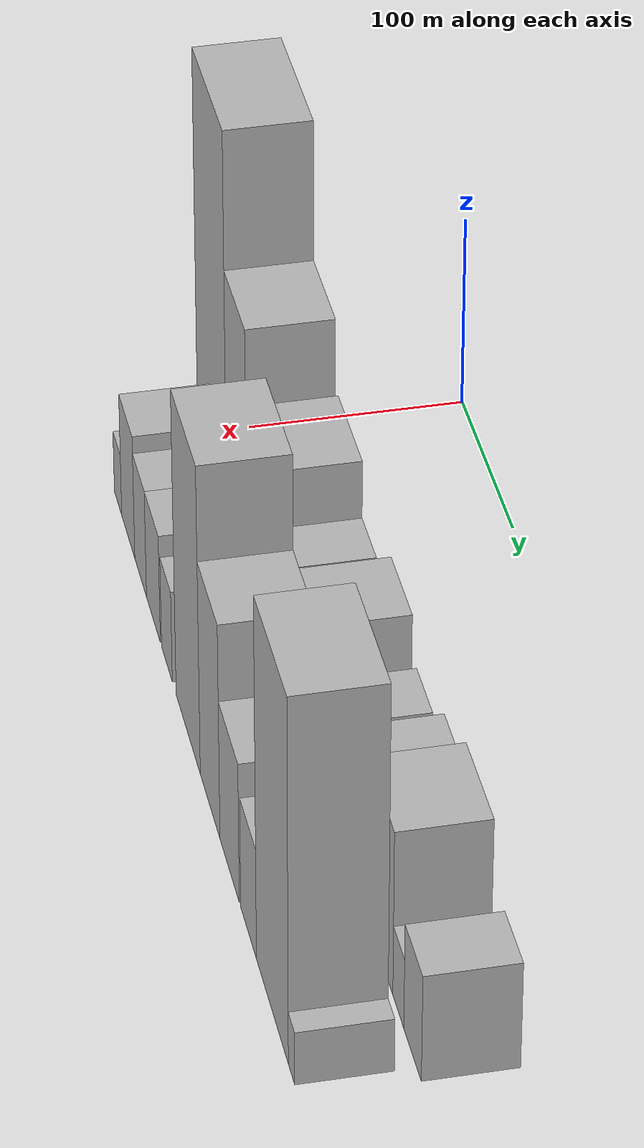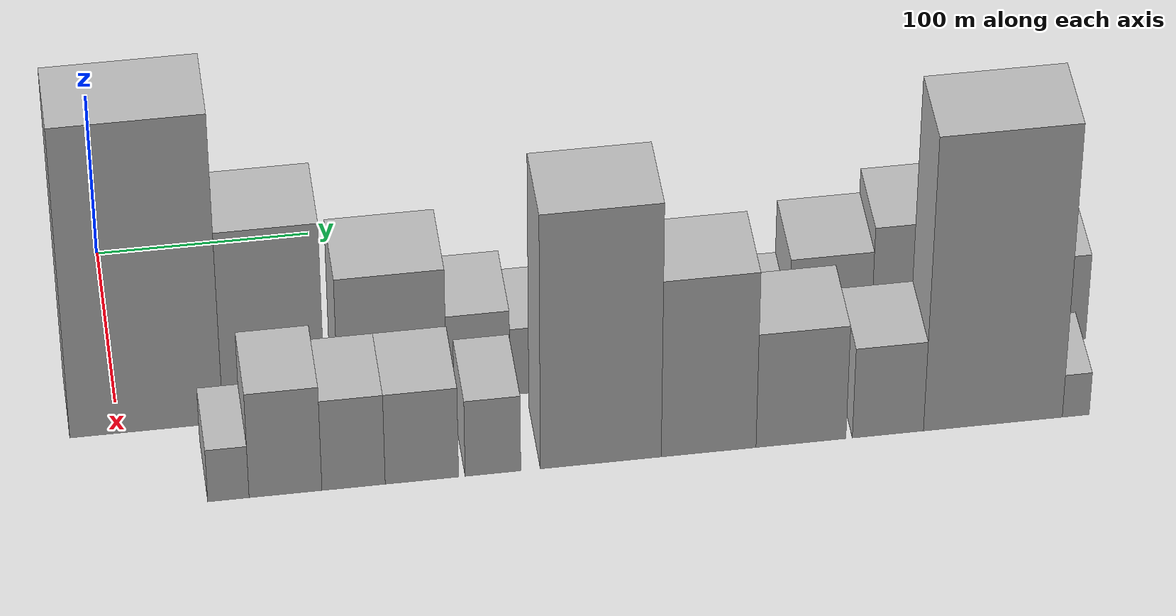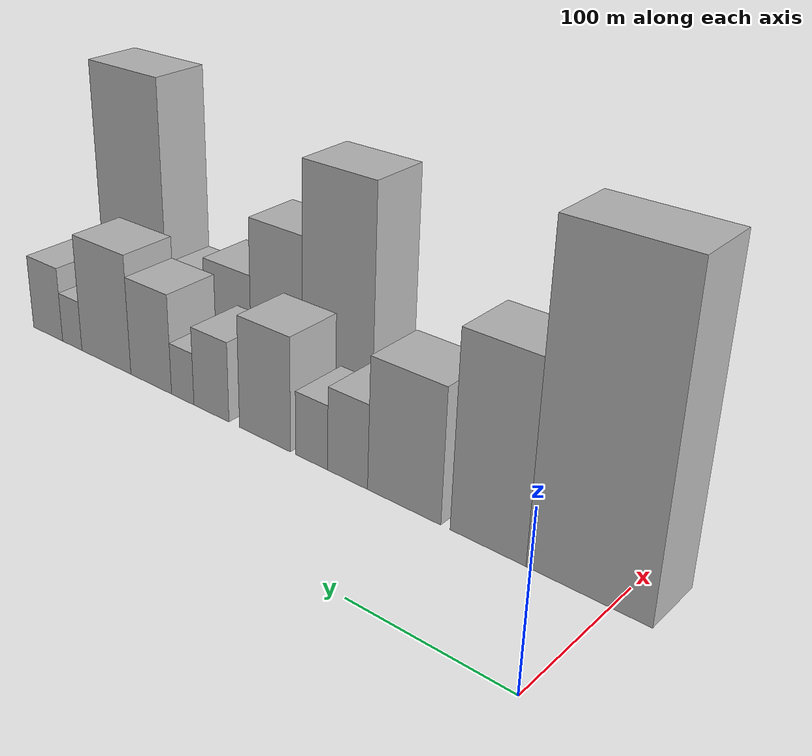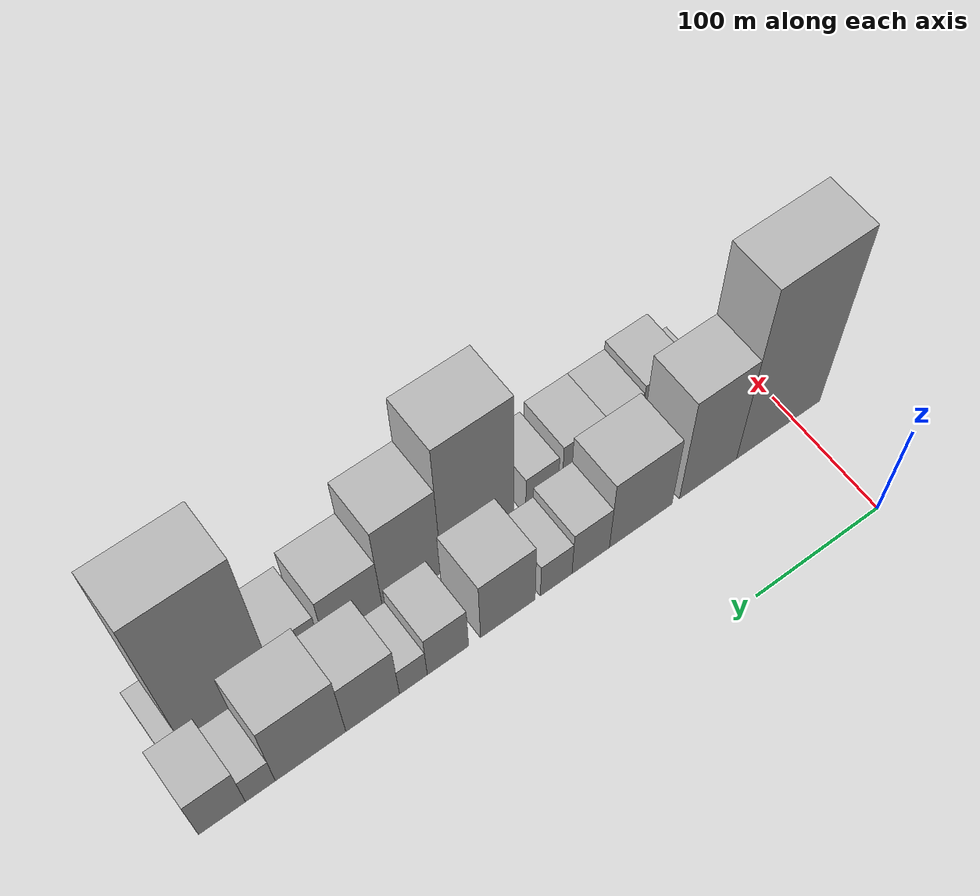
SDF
<sdf version="1.6">
 <world name="default">
  <model name="building_9">
   <static>1</static>
   <pose>100.0000 12.9150 0 0.000000 0.000000 0.000000</pose>
   <link name="link">
    <pose>0 0 96.00 0 0 0</pose>
    <collision name="collision"><geometry><box><size>40.0000 70.5156 192.0000</size></box></geometry></collision>
    <visual name="visual">
     <cast_shadows>0</cast_shadows>
     <geometry><box><size>40.0000 70.5156 192.0000</size></box></geometry>
     <material>
      <script>
       <uri>model://HANNAS_wall/materials/scripts</uri>
       <uri>model://HANNAS_wall/materials/textures</uri>
       <name>vrc/HANNAS_wall</name>
      </script>
     </material>
    </visual>
   </link>
  </model>
  <model name="building_10">
   <static>1</static>
   <pose>100.0000 71.7450 0 0.000000 0.000000 0.000000</pose>
   <link name="link">
    <pose>0 0 60.00 0 0 0</pose>
    <collision name="collision"><geometry><box><size>40.0000 47.1444 120.0000</size></box></geometry></collision>
    <visual name="visual">
     <cast_shadows>0</cast_shadows>
     <geometry><box><size>40.0000 47.1444 120.0000</size></box></geometry>
     <material>
      <script>
       <uri>model://HANNAS_wall/materials/scripts</uri>
       <uri>model://HANNAS_wall/materials/textures</uri>
       <name>vrc/HANNAS_wall</name>
      </script>
     </material>
    </visual>
   </link>
  </model>
  <model name="building_11">
   <static>1</static>
   <pose>100.0000 126.4059 0 0.000000 0.000000 0.000000</pose>
   <link name="link">
    <pose>0 0 42.00 0 0 0</pose>
    <collision name="collision"><geometry><box><size>40.0000 50.1772 84.0000</size></box></geometry></collision>
    <visual name="visual">
     <cast_shadows>0</cast_shadows>
     <geometry><box><size>40.0000 50.1772 84.0000</size></box></geometry>
     <material>
      <script>
       <uri>model://HANNAS_wall/materials/scripts</uri>
       <uri>model://HANNAS_wall/materials/textures</uri>
       <name>vrc/HANNAS_wall</name>
      </script>
     </material>
    </visual>
   </link>
  </model>
  <model name="building_12">
   <static>1</static>
   <pose>100.0000 166.1870 0 0.000000 0.000000 0.000000</pose>
   <link name="link">
    <pose>0 0 27.00 0 0 0</pose>
    <collision name="collision"><geometry><box><size>40.0000 29.3850 54.0000</size></box></geometry></collision>
    <visual name="visual">
     <cast_shadows>0</cast_shadows>
     <geometry><box><size>40.0000 29.3850 54.0000</size></box></geometry>
     <material>
      <script>
       <uri>model://HANNAS_wall/materials/scripts</uri>
       <uri>model://HANNAS_wall/materials/textures</uri>
       <name>vrc/HANNAS_wall</name>
      </script>
     </material>
    </visual>
   </link>
  </model>
  <model name="building_13">
   <static>1</static>
   <pose>100.0000 193.1031 0 0.000000 0.000000 0.000000</pose>
   <link name="link">
    <pose>0 0 21.00 0 0 0</pose>
    <collision name="collision"><geometry><box><size>40.0000 24.4473 42.0000</size></box></geometry></collision>
    <visual name="visual">
     <cast_shadows>0</cast_shadows>
     <geometry><box><size>40.0000 24.4473 42.0000</size></box></geometry>
     <material>
      <script>
       <uri>model://HANNAS_wall/materials/scripts</uri>
       <uri>model://HANNAS_wall/materials/textures</uri>
       <name>vrc/HANNAS_wall</name>
      </script>
     </material>
    </visual>
   </link>
  </model>
  <model name="building_14">
   <static>1</static>
   <pose>100.0000 230.0118 0 0.000000 0.000000 0.000000</pose>
   <link name="link">
    <pose>0 0 37.50 0 0 0</pose>
    <collision name="collision"><geometry><box><size>40.0000 41.3701 75.0000</size></box></geometry></collision>
    <visual name="visual">
     <cast_shadows>0</cast_shadows>
     <geometry><box><size>40.0000 41.3701 75.0000</size></box></geometry>
     <material>
      <script>
       <uri>model://HANNAS_wall/materials/scripts</uri>
       <uri>model://HANNAS_wall/materials/textures</uri>
       <name>vrc/HANNAS_wall</name>
      </script>
     </material>
    </visual>
   </link>
  </model>
  <model name="building_15">
   <static>1</static>
   <pose>100.0000 274.9624 0 0.000000 0.000000 0.000000</pose>
   <link name="link">
    <pose>0 0 27.00 0 0 0</pose>
    <collision name="collision"><geometry><box><size>40.0000 30.5310 54.0000</size></box></geometry></collision>
    <visual name="visual">
     <cast_shadows>0</cast_shadows>
     <geometry><box><size>40.0000 30.5310 54.0000</size></box></geometry>
     <material>
      <script>
       <uri>model://HANNAS_wall/materials/scripts</uri>
       <uri>model://HANNAS_wall/materials/textures</uri>
       <name>vrc/HANNAS_wall</name>
      </script>
     </material>
    </visual>
   </link>
  </model>
  <model name="building_16">
   <static>1</static>
   <pose>100.0000 300.3719 0 0.000000 0.000000 0.000000</pose>
   <link name="link">
    <pose>0 0 18.00 0 0 0</pose>
    <collision name="collision"><geometry><box><size>40.0000 20.2881 36.0000</size></box></geometry></collision>
    <visual name="visual">
     <cast_shadows>0</cast_shadows>
     <geometry><box><size>40.0000 20.2881 36.0000</size></box></geometry>
     <material>
      <script>
       <uri>model://HANNAS_wall/materials/scripts</uri>
       <uri>model://HANNAS_wall/materials/textures</uri>
       <name>vrc/HANNAS_wall</name>
      </script>
     </material>
    </visual>
   </link>
  </model>
  <model name="building_17">
   <static>1</static>
   <pose>100.0000 329.7870 0 0.000000 0.000000 0.000000</pose>
   <link name="link">
    <pose>0 0 34.50 0 0 0</pose>
    <collision name="collision"><geometry><box><size>40.0000 38.5421 69.0000</size></box></geometry></collision>
    <visual name="visual">
     <cast_shadows>0</cast_shadows>
     <geometry><box><size>40.0000 38.5421 69.0000</size></box></geometry>
     <material>
      <script>
       <uri>model://HANNAS_wall/materials/scripts</uri>
       <uri>model://HANNAS_wall/materials/textures</uri>
       <name>vrc/HANNAS_wall</name>
      </script>
     </material>
    </visual>
   </link>
  </model>
  <model name="building_18">
   <static>1</static>
   <pose>100.0000 373.8035 0 0.000000 0.000000 0.000000</pose>
   <link name="link">
    <pose>0 0 42.00 0 0 0</pose>
    <collision name="collision"><geometry><box><size>40.0000 49.4909 84.0000</size></box></geometry></collision>
    <visual name="visual">
     <cast_shadows>0</cast_shadows>
     <geometry><box><size>40.0000 49.4909 84.0000</size></box></geometry>
     <material>
      <script>
       <uri>model://HANNAS_wall/materials/scripts</uri>
       <uri>model://HANNAS_wall/materials/textures</uri>
       <name>vrc/HANNAS_wall</name>
      </script>
     </material>
    </visual>
   </link>
  </model>
  <model name="building_19">
   <static>1</static>
   <pose>100.0000 408.7993 0 0.000000 0.000000 0.000000</pose>
   <link name="link">
    <pose>0 0 18.00 0 0 0</pose>
    <collision name="collision"><geometry><box><size>40.0000 20.5007 36.0000</size></box></geometry></collision>
    <visual name="visual">
     <cast_shadows>0</cast_shadows>
     <geometry><box><size>40.0000 20.5007 36.0000</size></box></geometry>
     <material>
      <script>
       <uri>model://HANNAS_wall/materials/scripts</uri>
       <uri>model://HANNAS_wall/materials/textures</uri>
       <name>vrc/HANNAS_wall</name>
      </script>
     </material>
    </visual>
   </link>
  </model>
  <model name="building_20">
   <static>1</static>
   <pose>100.0000 434.9846 0 0.000000 0.000000 0.000000</pose>
   <link name="link">
    <pose>0 0 27.00 0 0 0</pose>
    <collision name="collision"><geometry><box><size>40.0000 31.8700 54.0000</size></box></geometry></collision>
    <visual name="visual">
     <cast_shadows>0</cast_shadows>
     <geometry><box><size>40.0000 31.8700 54.0000</size></box></geometry>
     <material>
      <script>
       <uri>model://HANNAS_wall/materials/scripts</uri>
       <uri>model://HANNAS_wall/materials/textures</uri>
       <name>vrc/HANNAS_wall</name>
      </script>
     </material>
    </visual>
   </link>
  </model>
  <model name="building_33">
   <static>1</static>
   <pose>149.0000 45.8425 0 0.000000 0.000000 0.000000</pose>
   <link name="link">
    <pose>0 0 16.50 0 0 0</pose>
    <collision name="collision"><geometry><box><size>40.0000 18.8173 33.0000</size></box></geometry></collision>
    <visual name="visual">
     <cast_shadows>0</cast_shadows>
     <geometry><box><size>40.0000 18.8173 33.0000</size></box></geometry>
     <material>
      <script>
       <uri>model://HANNAS_wall/materials/scripts</uri>
       <uri>model://HANNAS_wall/materials/textures</uri>
       <name>vrc/HANNAS_wall</name>
      </script>
     </material>
    </visual>
   </link>
  </model>
  <model name="building_34">
   <static>1</static>
   <pose>149.0000 71.8569 0 0.000000 0.000000 0.000000</pose>
   <link name="link">
    <pose>0 0 33.00 0 0 0</pose>
    <collision name="collision"><geometry><box><size>40.0000 33.2116 66.0000</size></box></geometry></collision>
    <visual name="visual">
     <cast_shadows>0</cast_shadows>
     <geometry><box><size>40.0000 33.2116 66.0000</size></box></geometry>
     <material>
      <script>
       <uri>model://HANNAS_wall/materials/scripts</uri>
       <uri>model://HANNAS_wall/materials/textures</uri>
       <name>vrc/HANNAS_wall</name>
      </script>
     </material>
    </visual>
   </link>
  </model>
  <model name="building_35">
   <static>1</static>
   <pose>149.0000 102.9097 0 0.000000 0.000000 0.000000</pose>
   <link name="link">
    <pose>0 0 28.50 0 0 0</pose>
    <collision name="collision"><geometry><box><size>40.0000 28.8939 57.0000</size></box></geometry></collision>
    <visual name="visual">
     <cast_shadows>0</cast_shadows>
     <geometry><box><size>40.0000 28.8939 57.0000</size></box></geometry>
     <material>
      <script>
       <uri>model://HANNAS_wall/materials/scripts</uri>
       <uri>model://HANNAS_wall/materials/textures</uri>
       <name>vrc/HANNAS_wall</name>
      </script>
     </material>
    </visual>
   </link>
  </model>
  <model name="building_36">
   <static>1</static>
   <pose>149.0000 134.1369 0 0.000000 0.000000 0.000000</pose>
   <link name="link">
    <pose>0 0 28.50 0 0 0</pose>
    <collision name="collision"><geometry><box><size>40.0000 33.5605 57.0000</size></box></geometry></collision>
    <visual name="visual">
     <cast_shadows>0</cast_shadows>
     <geometry><box><size>40.0000 33.5605 57.0000</size></box></geometry>
     <material>
      <script>
       <uri>model://HANNAS_wall/materials/scripts</uri>
       <uri>model://HANNAS_wall/materials/textures</uri>
       <name>vrc/HANNAS_wall</name>
      </script>
     </material>
    </visual>
   </link>
  </model>
  <model name="building_37">
   <static>1</static>
   <pose>149.0000 166.6847 0 0.000000 0.000000 0.000000</pose>
   <link name="link">
    <pose>0 0 24.00 0 0 0</pose>
    <collision name="collision"><geometry><box><size>40.0000 25.5351 48.0000</size></box></geometry></collision>
    <visual name="visual">
     <cast_shadows>0</cast_shadows>
     <geometry><box><size>40.0000 25.5351 48.0000</size></box></geometry>
     <material>
      <script>
       <uri>model://HANNAS_wall/materials/scripts</uri>
       <uri>model://HANNAS_wall/materials/textures</uri>
       <name>vrc/HANNAS_wall</name>
      </script>
     </material>
    </visual>
   </link>
  </model>
  <model name="building_38">
   <static>1</static>
   <pose>149.0000 216.2814 0 0.000000 0.000000 0.000000</pose>
   <link name="link">
    <pose>0 0 79.50 0 0 0</pose>
    <collision name="collision"><geometry><box><size>40.0000 55.6584 159.0000</size></box></geometry></collision>
    <visual name="visual">
     <cast_shadows>0</cast_shadows>
     <geometry><box><size>40.0000 55.6584 159.0000</size></box></geometry>
     <material>
      <script>
       <uri>model://HANNAS_wall/materials/scripts</uri>
       <uri>model://HANNAS_wall/materials/textures</uri>
       <name>vrc/HANNAS_wall</name>
      </script>
     </material>
    </visual>
   </link>
  </model>
  <model name="building_39">
   <static>1</static>
   <pose>149.0000 266.0023 0 0.000000 0.000000 0.000000</pose>
   <link name="link">
    <pose>0 0 55.50 0 0 0</pose>
    <collision name="collision"><geometry><box><size>40.0000 43.7834 111.0000</size></box></geometry></collision>
    <visual name="visual">
     <cast_shadows>0</cast_shadows>
     <geometry><box><size>40.0000 43.7834 111.0000</size></box></geometry>
     <material>
      <script>
       <uri>model://HANNAS_wall/materials/scripts</uri>
       <uri>model://HANNAS_wall/materials/textures</uri>
       <name>vrc/HANNAS_wall</name>
      </script>
     </material>
    </visual>
   </link>
  </model>
  <model name="building_40">
   <static>1</static>
   <pose>149.0000 308.7176 0 0.000000 0.000000 0.000000</pose>
   <link name="link">
    <pose>0 0 36.00 0 0 0</pose>
    <collision name="collision"><geometry><box><size>40.0000 41.6472 72.0000</size></box></geometry></collision>
    <visual name="visual">
     <cast_shadows>0</cast_shadows>
     <geometry><box><size>40.0000 41.6472 72.0000</size></box></geometry>
     <material>
      <script>
       <uri>model://HANNAS_wall/materials/scripts</uri>
       <uri>model://HANNAS_wall/materials/textures</uri>
       <name>vrc/HANNAS_wall</name>
      </script>
     </material>
    </visual>
   </link>
  </model>
  <model name="building_41">
   <static>1</static>
   <pose>149.0000 349.0609 0 0.000000 0.000000 0.000000</pose>
   <link name="link">
    <pose>0 0 28.50 0 0 0</pose>
    <collision name="collision"><geometry><box><size>40.0000 33.0392 57.0000</size></box></geometry></collision>
    <visual name="visual">
     <cast_shadows>0</cast_shadows>
     <geometry><box><size>40.0000 33.0392 57.0000</size></box></geometry>
     <material>
      <script>
       <uri>model://HANNAS_wall/materials/scripts</uri>
       <uri>model://HANNAS_wall/materials/textures</uri>
       <name>vrc/HANNAS_wall</name>
      </script>
     </material>
    </visual>
   </link>
  </model>
  <model name="building_42">
   <static>1</static>
   <pose>149.0000 397.9539 0 0.000000 0.000000 0.000000</pose>
   <link name="link">
    <pose>0 0 91.50 0 0 0</pose>
    <collision name="collision"><geometry><box><size>40.0000 64.7468 183.0000</size></box></geometry></collision>
    <visual name="visual">
     <cast_shadows>0</cast_shadows>
     <geometry><box><size>40.0000 64.7468 183.0000</size></box></geometry>
     <material>
      <script>
       <uri>model://HANNAS_wall/materials/scripts</uri>
       <uri>model://HANNAS_wall/materials/textures</uri>
       <name>vrc/HANNAS_wall</name>
      </script>
     </material>
    </visual>
   </link>
  </model>
  <model name="building_43">
   <static>1</static>
   <pose>149.0000 436.6059 0 0.000000 0.000000 0.000000</pose>
   <link name="link">
    <pose>0 0 13.50 0 0 0</pose>
    <collision name="collision"><geometry><box><size>40.0000 12.5572 27.0000</size></box></geometry></collision>
    <visual name="visual">
     <cast_shadows>0</cast_shadows>
     <geometry><box><size>40.0000 12.5572 27.0000</size></box></geometry>
     <material>
      <script>
       <uri>model://HANNAS_wall/materials/scripts</uri>
       <uri>model://HANNAS_wall/materials/textures</uri>
       <name>vrc/HANNAS_wall</name>
      </script>
     </material>
    </visual>
   </link>
  </model>
 </world>
</sdf>
